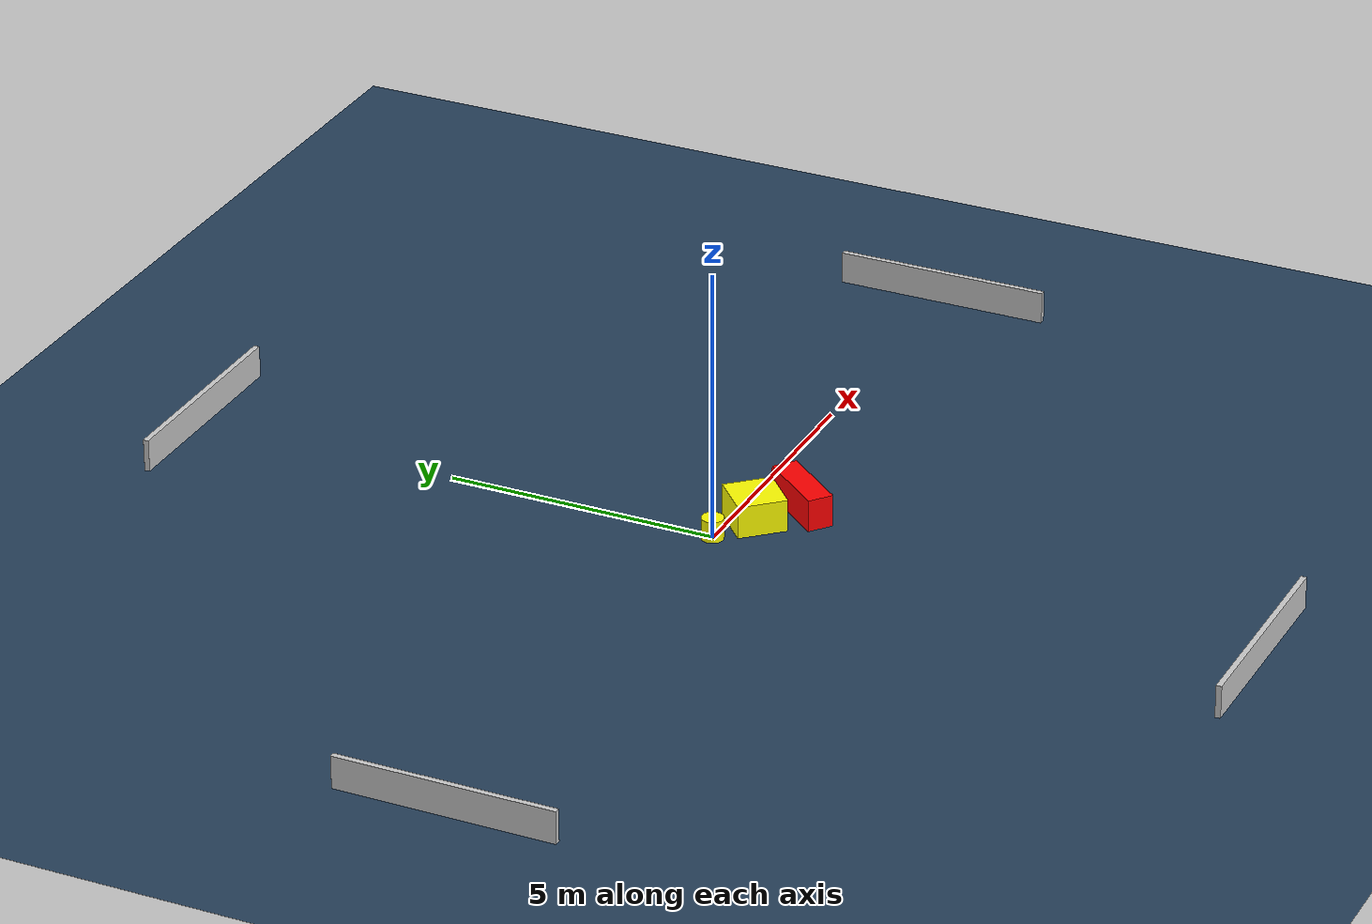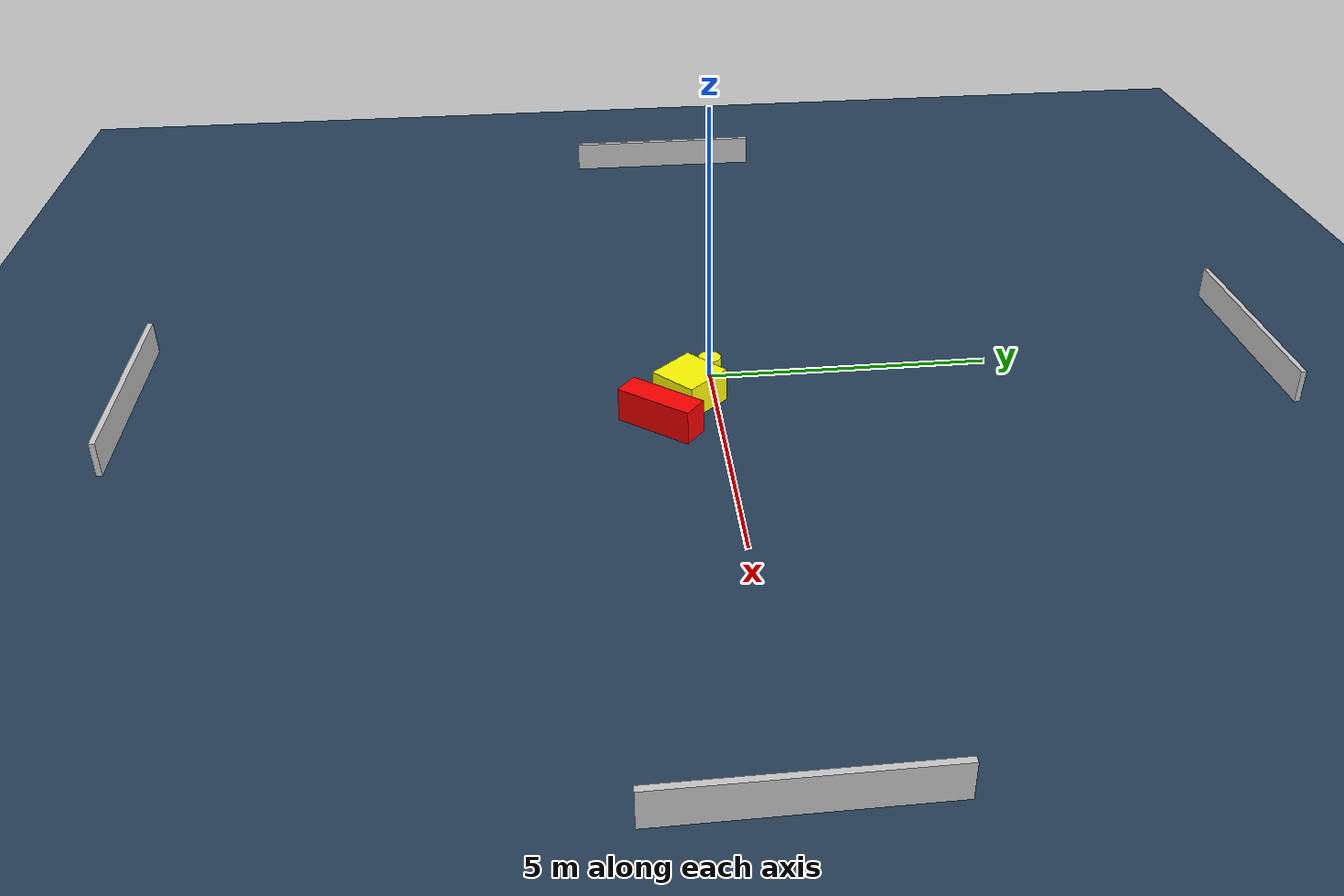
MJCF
<?xml version="1.0" ?>
<mujoco model="generated_environment">
  <option timestep="0.01" integrator="RK4" cone="elliptic"/>
  <default>
    <geom density="1"/>
  </default>
  <asset>
    <texture builtin="gradient" height="3072" name="skybox" rgb1="0.3 0.5 0.7" rgb2="0 0 0" type="skybox" width="512"/>
    <texture builtin="checker" height="300" name="groundplane" rgb1="0.2 0.3 0.4" rgb2="0.1 0.2 0.3" type="2d" width="300"/>
    <material name="groundplane" reflectance="0.2" texrepeat="5 5" texture="groundplane"/>
  </asset>
  <worldbody>
    <light dir="0 0 -1" directional="true" pos="0 0 1.5"/>
    <geom condim="3" friction="0.5 0.005 0.001" material="groundplane" name="floor" pos="0 0 0" size="0 0 0.05" type="plane"/>
    <body name="walls">
      <geom name="wall_1" condim="4" pos="-10.0 0.0 0.3" rgba="0.800000011920929 0.800000011920929 0.800000011920929 1.0" size="0.05 2.0 0.3" type="box"/>
      <geom name="wall_2" condim="4" pos="10.0 0.0 0.3" rgba="0.800000011920929 0.800000011920929 0.800000011920929 1.0" size="0.05 2.0 0.3" type="box"/>
      <geom name="wall_3" condim="4" pos="0.0 -10.0 0.3" rgba="0.800000011920929 0.800000011920929 0.800000011920929 1.0" size="2.0 0.05 0.3" type="box"/>
      <geom name="wall_4" condim="4" pos="0.0 10.0 0.3" rgba="0.800000011920929 0.800000011920929 0.800000011920929 1.0" size="2.0 0.05 0.3" type="box"/>
    </body>
    <body name="robot">
      <joint name="joint_x" type="slide" pos="0 0 0" axis="1 0 0"/>
      <joint name="joint_y" type="slide" pos="0 0 0" axis="0 1 0"/>
      <geom name="robot" type="cylinder" pos="0.0 0.0 0.2" size="0.2 0.2 0.0" mass="5.0" friction="1.0 0.005 0.0001" condim="4" rgba="1.0 1.0 0.0 1.0"/>
    </body>
    <body name="obstacle_1_movable">
      <geom name="obstacle_1_movable" condim="4" pos="0.7909881184376188 -0.4337141572055723 0.3" euler="0 0 222.3597208989878" friction="0.0 0.005 0.001" rgba="1.0 1.0 0.0 1.0" size="0.44612335079542986 0.4506953212432264 0.3" type="box" mass="0.1"/>
      <joint type="free"/>
    </body>
    <body name="obstacle_2_static">
      <geom name="obstacle_2_static" condim="4" pos="1.5196513408651469 -0.9974071346251505 0.3" euler="0 0 50.8010919062797" friction="0.0 0.005 0.001" rgba="1.0 0.0 0.0 1.0" size="0.7030500385235039 0.23583031363912726 0.3" type="box"/>
    </body>
  </worldbody>
  <actuator>
    <motor name="actuator_x" joint="joint_x" gear="1" ctrlrange="-1 1"/>
    <motor name="actuator_y" joint="joint_y" gear="1" ctrlrange="-1 1"/>
  </actuator>
</mujoco>
